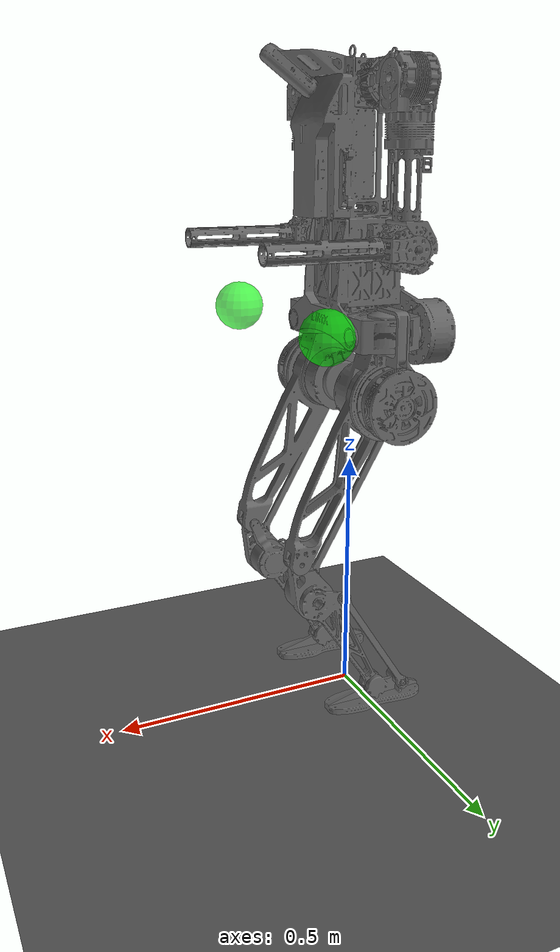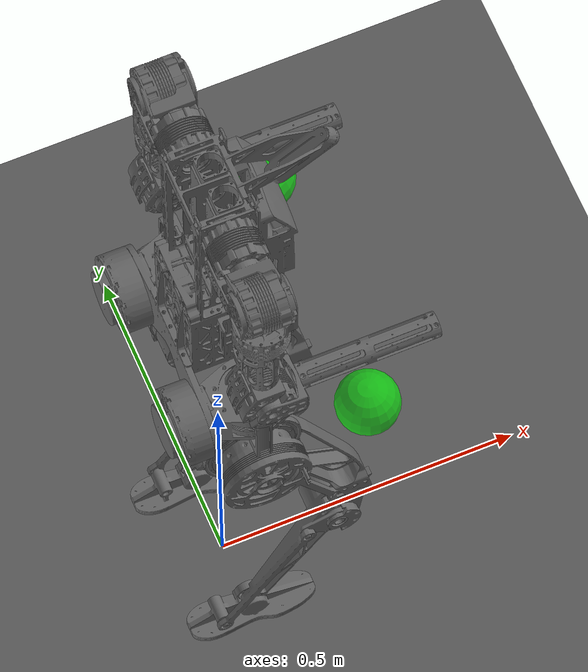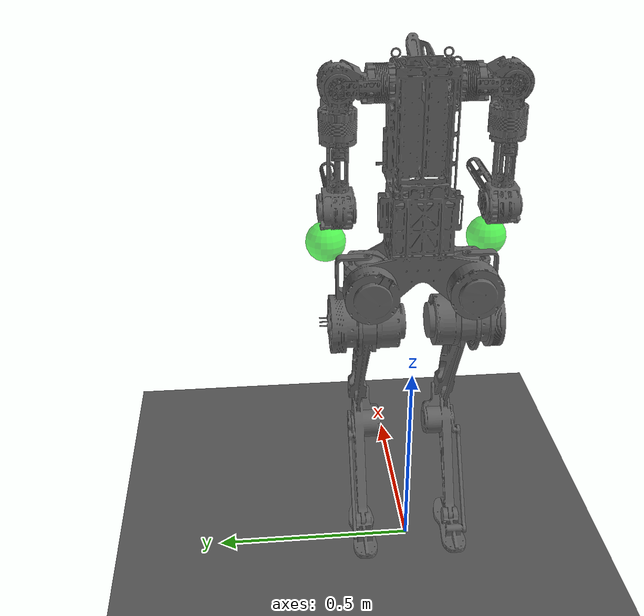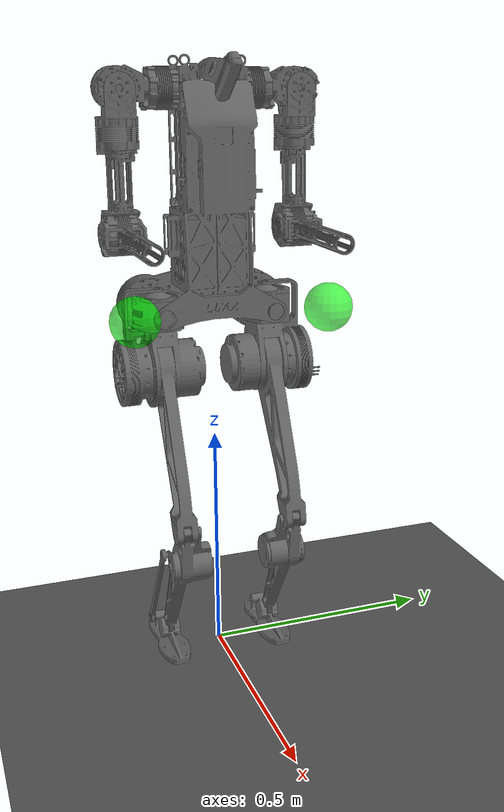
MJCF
<mujoco model="humanoid_limx">
    <compiler angle="radian" meshdir="../meshes" autolimits="true"/>
    <size njmax="5000" nconmax="10000"/>
    <asset>
        <mesh name="base_link" file="base_link.STL"/>
        <mesh name="shoulder_pitch_L" file="shoulder_pitch_L.STL"/>
        <mesh name="shoulder_roll_L" file="shoulder_roll_L.STL"/>
        <mesh name="shoulder_yaw_L" file="shoulder_yaw_L.STL"/>
        <mesh name="elbow_L" file="elbow_L.STL"/>
        <mesh name="hip_roll_L" file="hip_roll_L.STL"/>
        <mesh name="hip_yaw_L" file="hip_yaw_L.STL"/>
        <mesh name="hip_pitch_L" file="hip_pitch_L.STL"/>
        <mesh name="knee_L" file="knee_L.STL"/>
        <mesh name="ankle_L" file="ankle_L.STL"/>
        <mesh name="shoulder_pitch_R" file="shoulder_pitch_R.STL"/>
        <mesh name="shoulder_roll_R" file="shoulder_roll_R.STL"/>
        <mesh name="shoulder_yaw_R" file="shoulder_yaw_R.STL"/>
        <mesh name="elbow_R" file="elbow_R.STL"/>
        <mesh name="hip_roll_R" file="hip_roll_R.STL"/>
        <mesh name="hip_yaw_R" file="hip_yaw_R.STL"/>
        <mesh name="hip_pitch_R" file="hip_pitch_R.STL"/>
        <mesh name="knee_R" file="knee_R.STL"/>
        <mesh name="ankle_R" file="ankle_R.STL"/>
    </asset>

    <default>
        <light castshadow="false" diffuse="1 1 1"/>
        <camera fovy="60"/>
        <default class="visual1">
            <geom contype="0" conaffinity="0" group="1" type="mesh" rgba="0.4 0.4 0.4 1"/>
        </default>
        <default class="visual2">
            <geom contype="0" conaffinity="0" group="1" type="mesh" rgba="0.8 0.8 0.8 1"/>
        </default>
        <default class="collision">
            <geom type="mesh" contype="1" conaffinity="1" friction="1.0 0.3 0.3" rgba="0.5 0.6 0.7 0.0" margin="0.000"
                  group="0"/>
        </default>
        <joint damping="0.05" armature="0.01" frictionloss="0.01"/>
    </default>

    <visual>
        <rgba com="0.502 1.0 0 1.0" fog="0 0 0 1" contactpoint="0.9 0.9 0.9 0.8"
              contactforce="0.9 0.3 0.3 0.5"/>
        <scale com="0.05" forcewidth="0.04" contactwidth="0.10" contactheight="0.005" selectpoint="0.01"/>
        <map force="0.015"/>
    </visual>

    <asset>
        <texture type="skybox" builtin="gradient" width="512" height="512" rgb1=".4 .6 .8" rgb2="0 0 0"/>
        <texture name="texgeom" type="cube" builtin="flat" mark="cross" width="128" height="128"
                 rgb1="0.6 0.6 0.6" rgb2="0.6 0.6 0.6" markrgb="1 1 1"/>
        <texture name="texplane" type="2d" builtin="checker" rgb1=".4 .4 .4" rgb2=".6 .6 .6"
                 width="512" height="512"/>
        <material name='MatPlane' reflectance='0.3' texture="texplane" texrepeat="1 1" texuniform="true"
                  rgba=".7 .7 .7 1"/>
    </asset>
    <option timestep="0.001"/>

    <worldbody>
        <light directional="true" diffuse=".8 .8 .8" pos="0 0 10" dir="0 0 -10"/>
        <geom name="floor" pos="0 0 0" type="plane" size="0 0 1" material="MatPlane"
              friction="1.0 0.3 0.3"/>
        <camera name="track" mode="targetbody" target="base_link" pos="2.5 -2.3 2.2"
                xyaxes="1 0 0 0 0.707 0.707"/>

        <body name="base_link" pos="0 0 0.81">
            <inertial pos="-0.016867 0 0.198205" quat="0.997233 0.000199377 0.0743336 0.00069793" mass="16.208"
                      diaginertia="0.582667 0.534441 0.120127"/>
            <joint name="floating_base_joint" type="free" limited="false" actuatorfrclimited="false"/>
            <geom class="visual1" mesh="base_link"/>
            <geom size="0.08 0.1 0.23" pos="0.02 0 0.26" type="box" class="collision"/>
            <geom size="0.0075 0.0075 0.002" type="box" class="collision"/>
            <site name="imu" pos="0 0 0"/>

            <body name="shoulder_pitch_L" pos="0 0.1216 0.41834">
                <inertial pos="0 0.0568 0" quat="0.560761 0.452342 -0.525028 0.453079" mass="0.958"
                          diaginertia="0.00104395 0.000995982 0.000819101"/>
                <joint name="shoulder_pitch_joint_L" pos="0 0 0" axis="0 -1 0" range="-0.7854 2.0944"
                       actuatorfrcrange="-40 40"/>
                <geom class="visual1" mesh="shoulder_pitch_L"/>
                <body name="shoulder_roll_L" pos="0.0275 0.0636 0">
                    <inertial pos="-0.025 0 -0.075" quat="0.69058 0.128413 0.127396 0.700271" mass="0.929"
                              diaginertia="0.00151521 0.00145646 0.000789017"/>
                    <joint name="shoulder_roll_joint_L" pos="0 0 0" axis="-1 0 0" range="-1.7453 0.0873"
                           actuatorfrcrange="-40 40"/>
                    <geom class="visual1" mesh="shoulder_roll_L"/>
                    <body name="shoulder_yaw_L" pos="-0.0275 0 -0.112">
                        <inertial pos="-0.00086 0 -0.14858" quat="0.994213 0.00773747 0.00877038 -0.106793" mass="1.075"
                                  diaginertia="0.00344189 0.00342502 0.000864184"/>
                        <joint name="shoulder_yaw_joint_L" pos="0 0 0" axis="0 0 1" range="-0.7854 1.5708"
                               actuatorfrcrange="-40 40"/>
                        <geom class="visual1" mesh="shoulder_yaw_L"/>
                        <geom class="collision" type="cylinder" pos="0 0 -0.02" size="0.04 0.08"/>
                        <body name="elbow_L" pos="0 0.0275 -0.1719">
                            <inertial pos="0.0902011 -0.0209237 -0.00010562"
                                      quat="0.0321311 0.70624 -0.0273707 0.706713" mass="0.279"
                                      diaginertia="0.00228198 0.00217614 0.000203879"/>
                            <joint name="elbow_joint_L" pos="0 0 0" axis="0 1 0" range="-0.5787 1.5708"
                                   actuatorfrcrange="-40 40"/>
                            <geom class="visual1" mesh="elbow_L"/>
                            <geom type="mesh" mesh="elbow_L" class="collision"/>
                            <geom size="0.005 0.005 0.005" name="contact_hand_L" pos="0.274 -0.0275 0" type="box" class="collision"/>
                        </body>
                    </body>
                </body>
            </body>
            <body name="hip_roll_L" pos="-0.068 0.118 -0.03116">
                <inertial pos="0.0711 0 0.0032" quat="-0.00364434 0.707821 -0.00368414 0.706372" mass="1.353"
                          diaginertia="0.00285593 0.0024456 0.00147459"/>
                <joint name="hip_roll_joint_L" pos="0 0 0" axis="-1 0 0" range="-0.5236 0.5236"
                       actuatorfrcrange="-120 120"/>
                <geom class="visual1" mesh="hip_roll_L"/>
                <geom size="0.035 0.05 0.05" pos="-0.04 0 0" type="box" class="collision"/>
                <body name="hip_yaw_L" pos="0.068 0 -0.0195">
                    <inertial pos="0 -0.03166 -0.0877" quat="0.694206 -0.129879 0.13083 0.695768" mass="1.999"
                              diaginertia="0.00698115 0.00636314 0.00381897"/>
                    <joint name="hip_yaw_joint_L" pos="0 0 0" axis="0 0 -1" range="-0.7854 0.7854"
                           actuatorfrcrange="-120 120"/>
                    <geom class="visual1" mesh="hip_yaw_L"/>
                    <body name="hip_pitch_L" pos="0 -0.024 -0.103">
                        <inertial pos="0.0202 0.055 -0.03835" quat="0.677 -0.227259 -0.118175 0.689971" mass="4.306"
                                  diaginertia="0.0501999 0.0481771 0.00830787"/>
                        <joint name="hip_pitch_joint_L" pos="0 0 0" axis="0 -1 0" range="-1.5359 1.0472"
                               actuatorfrcrange="-120 120"/>
                        <geom class="visual1" mesh="hip_pitch_L"/>
                        <geom class="collision" type="cylinder" size="0.07 0.09" pos="0 0.02 0" euler="1.57 0 0"/>
                        <geom class="collision" type="box" size="0.05 0.12 0.02" pos="0.1 0.025 -0.18"
                              euler="1.57 0 0.45"/>
                        <body name="knee_L" pos="0.175 0.024 -0.30311">
                            <inertial pos="-0.06018 -0.00312 -0.1125" quat="0.856787 0.147153 0.248882 0.426989"
                                      mass="1.694" diaginertia="0.0188075 0.0184519 0.00133193"/>
                            <joint name="knee_joint_L" pos="0 0 0" axis="0 -1 0" range="-1.0472 0.6981"
                                   actuatorfrcrange="-180 180"/>
                            <geom class="visual1" mesh="knee_L"/>
                            <geom class="collision" type="box" size="0.04 0.12 0.02" pos="-0.12 -0.0 -0.18"
                                  euler="1.57 0 -0.6"/>
                            <body name="ankle_L" pos="-0.175 0 -0.30311">
                                <inertial pos="-0.0104623 0.000992629 -0.0211327"
                                          quat="-0.133381 0.714215 -0.154381 0.669531" mass="0.407"
                                          diaginertia="0.00119015 0.00117079 0.000161028"/>
                                <joint name="ankle_joint_L" pos="0 0 0" axis="0 -1 0" range="-1.2566 0.6109"
                                       actuatorfrcrange="-40 40"/>
                                <geom class="visual1" mesh="ankle_L"/>
                                <geom size="0.105 0.03 0.01" pos="0 0 -0.029" type="box"
                                      class="collision"/>
                                <geom size="0.005 0.005 0.005" pos="-0.105 0 -0.039" type="box" class="collision"/>
                                <geom size="0.005 0.005 0.005" pos="0.105 0 -0.039" type="box" class="collision"/>
                                <geom size="0.005 0.005 0.005" pos="0 0 -0.039" type="box" class="collision"/>
                            </body>
                        </body>
                    </body>
                </body>
            </body>
            <body name="shoulder_pitch_R" pos="0 -0.1216 0.41834">
                <inertial pos="0 -0.0568 0" quat="0.452342 0.560761 -0.453079 0.525028" mass="0.958"
                          diaginertia="0.00104395 0.000995982 0.000819101"/>
                <joint name="shoulder_pitch_joint_R" pos="0 0 0" axis="0 -1 0" range="-0.7854 2.0944"
                       actuatorfrcrange="-40 40"/>
                <geom class="visual1" mesh="shoulder_pitch_R"/>
                <body name="shoulder_roll_R" pos="0.0275 -0.0636 0">
                    <inertial pos="-0.025 0 -0.075" quat="0.700271 0.127396 0.128413 0.69058" mass="0.929"
                              diaginertia="0.00151521 0.00145646 0.000789017"/>
                    <joint name="shoulder_roll_joint_R" pos="0 0 0" axis="-1 0 0" range="-0.0873 1.7453"
                           actuatorfrcrange="-40 40"/>
                    <geom class="visual1" mesh="shoulder_roll_R"/>
                    <body name="shoulder_yaw_R" pos="-0.0275 0 -0.112">
                        <inertial pos="-0.00086 0 -0.14858" quat="0.994213 -0.00773747 0.00877038 0.106793" mass="1.075"
                                  diaginertia="0.00344189 0.00342502 0.000864184"/>
                        <joint name="shoulder_yaw_joint_R" pos="0 0 0" axis="0 0 1" range="-1.5708 0.7854"
                               actuatorfrcrange="-40 40"/>
                        <geom class="visual1" mesh="shoulder_yaw_R"/>
                        <geom class="collision" type="cylinder" pos="0 0 -0.02" size="0.04 0.08"/>
                        <body name="elbow_R" pos="0 -0.0275 -0.1719">
                            <inertial pos="0.0902011 0.0209237 -0.00010562" quat="-0.0321311 0.70624 0.0273707 0.706713"
                                      mass="0.279" diaginertia="0.00228198 0.00217614 0.000203879"/>
                            <joint name="elbow_joint_R" pos="0 0 0" axis="0 -1 0" range="-1.5708 0.5787"
                                   actuatorfrcrange="-40 40"/>
                            <geom class="visual1" mesh="elbow_R"/>
                            <geom type="mesh" mesh="elbow_R" class="collision"/>
                            <geom size="0.005 0.005 0.005" name="contact_hand_R" pos="0.274 0.0275 0" type="box" class="collision"/>
                        </body>
                    </body>
                </body>
            </body>
            <body name="hip_roll_R" pos="-0.068 -0.118 -0.03116">
                <inertial pos="0.0711 0 0.0032" quat="0.00364434 0.707821 0.00368414 0.706372" mass="1.353"
                          diaginertia="0.00285593 0.0024456 0.00147459"/>
                <joint name="hip_roll_joint_R" pos="0 0 0" axis="-1 0 0" range="-0.5236 0.5236"
                       actuatorfrcrange="-120 120"/>
                <geom class="visual1" mesh="hip_roll_R"/>
                <geom size="0.035 0.05 0.05" pos="-0.04 0 0" type="box" class="collision"/>
                <body name="hip_yaw_R" pos="0.068 0 -0.0195">
                    <inertial pos="0 0.03166 -0.0877" quat="0.695768 0.13083 -0.129879 0.694206" mass="1.999"
                              diaginertia="0.00698115 0.00636314 0.00381897"/>
                    <joint name="hip_yaw_joint_R" pos="0 0 0" axis="0 0 -1" range="-0.7854 0.7854"
                           actuatorfrcrange="-120 120"/>
                    <geom class="visual1" mesh="hip_yaw_R"/>
                    <body name="hip_pitch_R" pos="0 0.024 -0.103">
                        <inertial pos="0.0202 -0.055 -0.03835" quat="0.689971 -0.118175 -0.227259 0.677" mass="4.306"
                                  diaginertia="0.0501999 0.0481771 0.00830787"/>
                        <joint name="hip_pitch_joint_R" pos="0 0 0" axis="0 1 0" range="-1.0472 1.5359"
                               actuatorfrcrange="-120 120"/>
                        <geom class="visual1" mesh="hip_pitch_R"/>
                        <geom class="collision" type="cylinder" size="0.07 0.09" pos="0 -0.02 0" euler="1.57 0 0"/>
                        <geom class="collision" type="box" size="0.05 0.12 0.02" pos="0.1 -0.025 -0.18"
                              euler="1.57 0 0.45"/>
                        <body name="knee_R" pos="0.175 -0.024 -0.30311">
                            <inertial pos="-0.06018 0.00312 -0.1125" quat="0.426989 0.248882 0.147153 0.856787"
                                      mass="1.694" diaginertia="0.0188075 0.0184519 0.00133193"/>
                            <joint name="knee_joint_R" pos="0 0 0" axis="0 1 0" range="-0.6981 1.0472"
                                   actuatorfrcrange="-180 180"/>
                            <geom class="visual1" mesh="knee_R"/>
                            <geom class="collision" type="box" size="0.04 0.12 0.02" pos="-0.12 -0.0 -0.18"
                                  euler="1.57 0 -0.6"/>
                            <body name="ankle_R" pos="-0.175 0 -0.30311">
                                <inertial pos="-0.0104623 -0.000992629 -0.0211327"
                                          quat="0.133381 0.714215 0.154381 0.669531" mass="0.407"
                                          diaginertia="0.00119015 0.00117079 0.000161028"/>
                                <joint name="ankle_joint_R" pos="0 0 0" axis="0 1 0" range="-0.6109 1.2566"
                                       actuatorfrcrange="-40 40"/>
                                <geom class="visual1" mesh="ankle_R"/>
                                <geom size="0.105 0.03 0.01" pos="0 0 -0.029" type="box"
                                      class="collision"/>
                                <geom size="0.005 0.005 0.005" pos="-0.105 0 -0.039" type="box" class="collision"/>
                                <geom size="0.005 0.005 0.005" pos="0.105 0 -0.039" type="box" class="collision"/>
                                <geom size="0.005 0.005 0.005" pos="0 0 -0.039" type="box" class="collision"/>
                            </body>
                        </body>
                    </body>
                </body>
            </body>
        </body>
        <body name="target_pos_L" mocap="true" pos="0.16 0.2 0.8">
            <geom class="visual1" type="sphere" size=".05" rgba="0 1 0 0.65"/>
        </body>
        <body name="target_pos_R" mocap="true" pos="0.16 -0.2 0.8">
            <geom class="visual1" type="sphere" size=".05" rgba="0 1 0 0.65"/>
        </body>
    </worldbody>

    <actuator>
        <motor name="hip_roll_L" gear="1" joint="hip_roll_joint_L"/>
        <motor name="hip_yaw_L" gear="1" joint="hip_yaw_joint_L"/>
        <motor name="hip_pitch_L" gear="1" joint="hip_pitch_joint_L"/>
        <motor name="knee_L" gear="1" joint="knee_joint_L"/>
        <motor name="ankle_L" gear="1" joint="ankle_joint_L"/>
        <motor name="hip_roll_R" gear="1" joint="hip_roll_joint_R"/>
        <motor name="hip_yaw_R" gear="1" joint="hip_yaw_joint_R"/>
        <motor name="hip_pitch_R" gear="1" joint="hip_pitch_joint_R"/>
        <motor name="knee_R" gear="1" joint="knee_joint_R"/>
        <motor name="ankle_R" gear="1" joint="ankle_joint_R"/>
        <motor name="shoulder_pitch_L" gear="1" joint="shoulder_pitch_joint_L"/>
        <motor name="shoulder_roll_L" gear="1" joint="shoulder_roll_joint_L"/>
        <motor name="shoulder_yaw_L" gear="1" joint="shoulder_yaw_joint_L"/>
        <motor name="elbow_L" gear="1" joint="elbow_joint_L"/>
        <motor name="shoulder_pitch_R" gear="1" joint="shoulder_pitch_joint_R"/>
        <motor name="shoulder_roll_R" gear="1" joint="shoulder_roll_joint_R"/>
        <motor name="shoulder_yaw_R" gear="1" joint="shoulder_yaw_joint_R"/>
        <motor name="elbow_R" gear="1" joint="elbow_joint_R"/>
    </actuator>

    <sensor>
        <framequat name="Body_Quat" objtype="site" objname="imu"/>
        <gyro name="Body_Gyro" site="imu"/>
        <accelerometer name="Body_Acc" site="imu"/>
    </sensor>
</mujoco>
